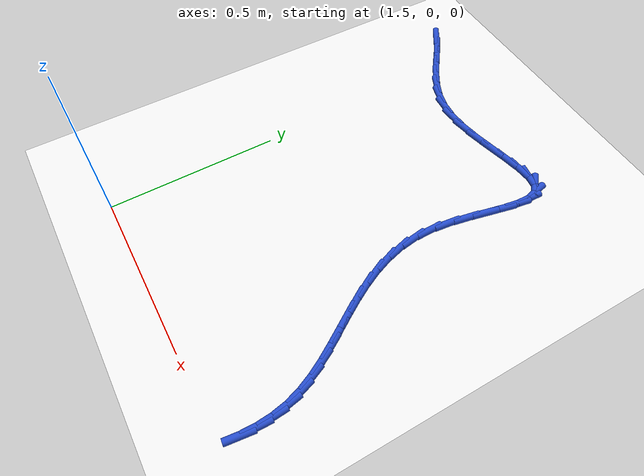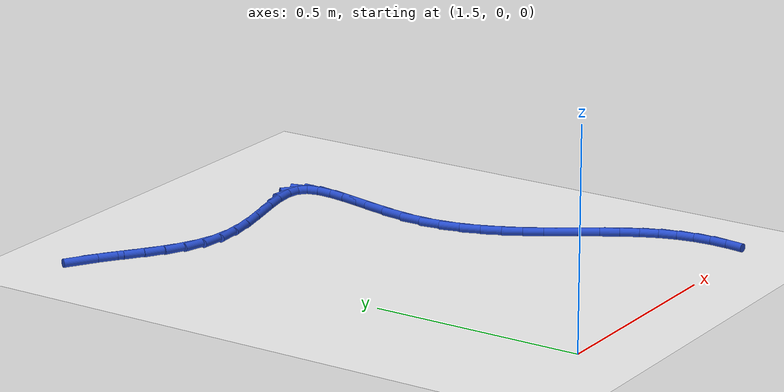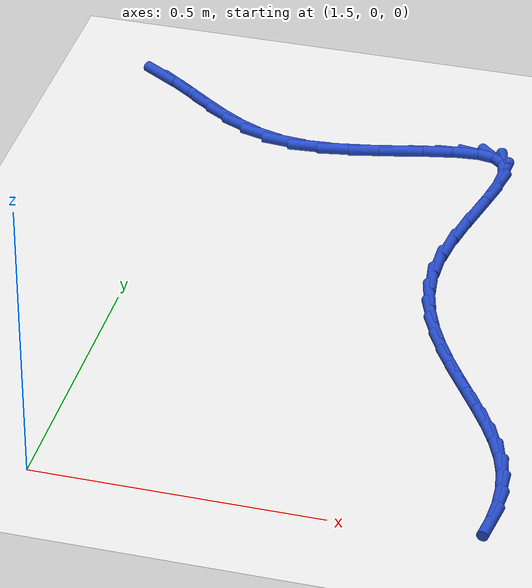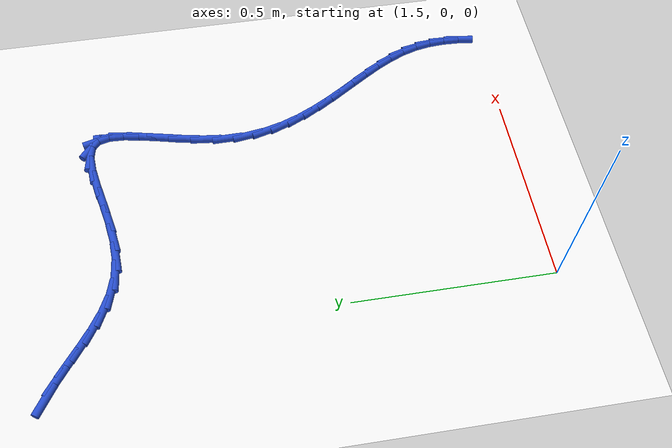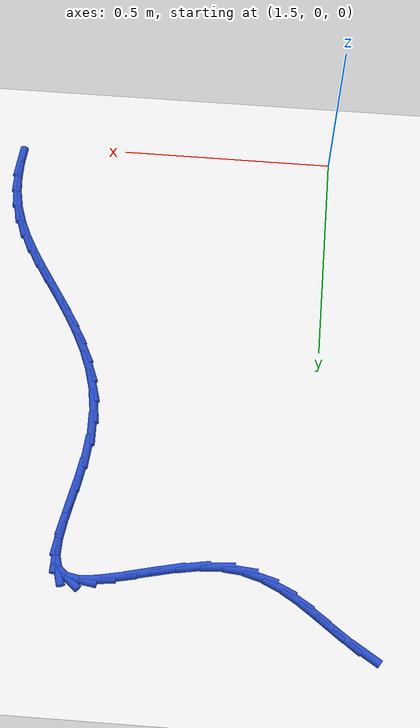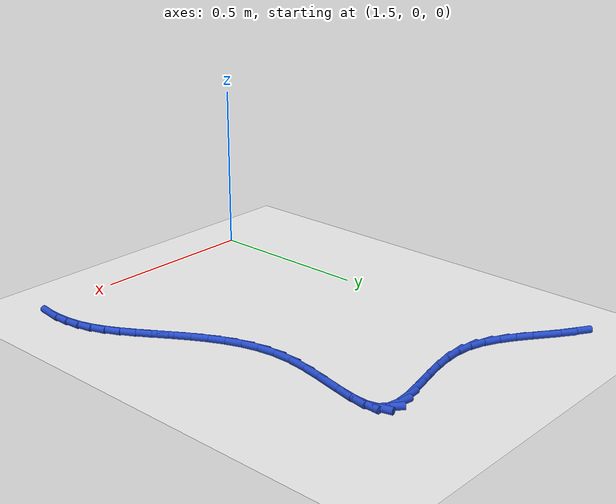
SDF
<sdf version="1.6">
 <world name="default">
  <model name="ground_plane">
   <static>1</static>
   <link name="link">
    <collision name="collision">
     <geometry><plane><normal>0 0 1</normal><size>100 100</size></plane></geometry>
     <surface><friction><ode><mu>100</mu><mu2>50</mu2></ode></friction></surface>
    </collision>
    <visual name="visual">
     <cast_shadows>0</cast_shadows>
     <geometry><plane><normal>0 0 1</normal><size>100 100</size></plane></geometry>
     <material>
      <script><uri>file://media/materials/scripts/gazebo.material</uri><name>Gazebo/WhiteGlow</name></script>
     </material>
    </visual>
   </link>
  </model>
  <model name="line">
   <link name="link_43">
    <pose>1.3680267707840656 1.2044589832217336 0.01 0 1.57 -0.5607190232727151</pose>
    <collision name="collision">
     <geometry><cylinder><radius>0.01</radius><length>0.08</length></cylinder></geometry>
    </collision>
    <visual name="visual">
     <material>
      <script><name>Gazebo/Blue</name><uri>file://media/materials/scripts/gazebo.material</uri></script>
     </material>
     <geometry><cylinder><radius>0.01</radius><length>0.08</length></cylinder></geometry>
    </visual>
   </link>
   <link name="link_44">
    <pose>1.4069775385761374 1.1799997849553465 0.01 0 1.57 -0.6251632926310164</pose>
    <collision name="collision">
     <geometry><cylinder><radius>0.01</radius><length>0.08</length></cylinder></geometry>
    </collision>
    <visual name="visual">
     <material>
      <script><name>Gazebo/Blue</name><uri>file://media/materials/scripts/gazebo.material</uri></script>
     </material>
     <geometry><cylinder><radius>0.01</radius><length>0.08</length></cylinder></geometry>
    </visual>
   </link>
   <link name="link_45">
    <pose>1.444891716823267 1.152635880324854 0.01 0 1.57 -0.6436807654438337</pose>
    <collision name="collision">
     <geometry><cylinder><radius>0.01</radius><length>0.08</length></cylinder></geometry>
    </collision>
    <visual name="visual">
     <material>
      <script><name>Gazebo/Blue</name><uri>file://media/materials/scripts/gazebo.material</uri></script>
     </material>
     <geometry><cylinder><radius>0.01</radius><length>0.08</length></cylinder></geometry>
    </visual>
   </link>
   <link name="link_46">
    <pose>1.4826580022899651 1.1243005632892524 0.01 0 1.57 -0.6179823619485597</pose>
    <collision name="collision">
     <geometry><cylinder><radius>0.01</radius><length>0.08</length></cylinder></geometry>
    </collision>
    <visual name="visual">
     <material>
      <script><name>Gazebo/Blue</name><uri>file://media/materials/scripts/gazebo.material</uri></script>
     </material>
     <geometry><cylinder><radius>0.01</radius><length>0.08</length></cylinder></geometry>
    </visual>
   </link>
   <link name="link_47">
    <pose>1.5211650917407433 1.0969271278075403 0.01 0 1.57 -0.5476481269111763</pose>
    <collision name="collision">
     <geometry><cylinder><radius>0.01</radius><length>0.08</length></cylinder></geometry>
    </collision>
    <visual name="visual">
     <material>
      <script><name>Gazebo/Blue</name><uri>file://media/materials/scripts/gazebo.material</uri></script>
     </material>
     <geometry><cylinder><radius>0.01</radius><length>0.08</length></cylinder></geometry>
    </visual>
   </link>
   <link name="link_48">
    <pose>1.5613016819401115 1.0724488678387132 0.01 0 1.57 -0.4316917704125591</pose>
    <collision name="collision">
     <geometry><cylinder><radius>0.01</radius><length>0.08</length></cylinder></geometry>
    </collision>
    <visual name="visual">
     <material>
      <script><name>Gazebo/Blue</name><uri>file://media/materials/scripts/gazebo.material</uri></script>
     </material>
     <geometry><cylinder><radius>0.01</radius><length>0.08</length></cylinder></geometry>
    </visual>
   </link>
   <link name="link_49">
    <pose>1.603956469652582 1.0527990773417697 0.01 0 1.57 -0.27282259820011046</pose>
    <collision name="collision">
     <geometry><cylinder><radius>0.01</radius><length>0.08</length></cylinder></geometry>
    </collision>
    <visual name="visual">
     <material>
      <script><name>Gazebo/Blue</name><uri>file://media/materials/scripts/gazebo.material</uri></script>
     </material>
     <geometry><cylinder><radius>0.01</radius><length>0.08</length></cylinder></geometry>
    </visual>
   </link>
   <link name="link_50">
    <pose>1.6500181516426642 1.0399110502757052 0.01 0 1.57 -0.08451036166621988</pose>
    <collision name="collision">
     <geometry><cylinder><radius>0.01</radius><length>0.08</length></cylinder></geometry>
    </collision>
    <visual name="visual">
     <material>
      <script><name>Gazebo/Blue</name><uri>file://media/materials/scripts/gazebo.material</uri></script>
     </material>
     <geometry><cylinder><radius>0.01</radius><length>0.08</length></cylinder></geometry>
    </visual>
   </link>
   <link name="link_51">
    <pose>1.7003308070543601 1.0356489581135537 0.01 0 1.57 0.07581926381912904</pose>
    <collision name="collision">
     <geometry><cylinder><radius>0.01</radius><length>0.08</length></cylinder></geometry>
    </collision>
    <visual name="visual">
     <material>
      <script><name>Gazebo/Blue</name><uri>file://media/materials/scripts/gazebo.material</uri></script>
     </material>
     <geometry><cylinder><radius>0.01</radius><length>0.08</length></cylinder></geometry>
    </visual>
   </link>
   <link name="link_52">
    <pose>1.7543680973071665 1.0397538945208913 0.01 0 1.57 0.17334936584459137</pose>
    <collision name="collision">
     <geometry><cylinder><radius>0.01</radius><length>0.08</length></cylinder></geometry>
    </collision>
    <visual name="visual">
     <material>
      <script><name>Gazebo/Blue</name><uri>file://media/materials/scripts/gazebo.material</uri></script>
     </material>
     <geometry><cylinder><radius>0.01</radius><length>0.08</length></cylinder></geometry>
    </visual>
   </link>
   <link name="link_53">
    <pose>1.810009408464629 1.0494970707568727 0.01 0 1.57 0.22357490172900715</pose>
    <collision name="collision">
     <geometry><cylinder><radius>0.01</radius><length>0.08</length></cylinder></geometry>
    </collision>
    <visual name="visual">
     <material>
      <script><name>Gazebo/Blue</name><uri>file://media/materials/scripts/gazebo.material</uri></script>
     </material>
     <geometry><cylinder><radius>0.01</radius><length>0.08</length></cylinder></geometry>
    </visual>
   </link>
   <link name="link_54">
    <pose>1.8650444159001893 1.0620107165337538 0.01 0 1.57 0.23344227509720847</pose>
    <collision name="collision">
     <geometry><cylinder><radius>0.01</radius><length>0.08</length></cylinder></geometry>
    </collision>
    <visual name="visual">
     <material>
      <script><name>Gazebo/Blue</name><uri>file://media/materials/scripts/gazebo.material</uri></script>
     </material>
     <geometry><cylinder><radius>0.01</radius><length>0.08</length></cylinder></geometry>
    </visual>
   </link>
   <link name="link_55">
    <pose>1.9172627949872918 1.074427061563792 0.01 0 1.57 0.19766019570771223</pose>
    <collision name="collision">
     <geometry><cylinder><radius>0.01</radius><length>0.08</length></cylinder></geometry>
    </collision>
    <visual name="visual">
     <material>
      <script><name>Gazebo/Blue</name><uri>file://media/materials/scripts/gazebo.material</uri></script>
     </material>
     <geometry><cylinder><radius>0.01</radius><length>0.08</length></cylinder></geometry>
    </visual>
   </link>
   <link name="link_56">
    <pose>1.9644542210993792 1.0838783355592445 0.01 0 1.57 0.09031823905235421</pose>
    <collision name="collision">
     <geometry><cylinder><radius>0.01</radius><length>0.08</length></cylinder></geometry>
    </collision>
    <visual name="visual">
     <material>
      <script><name>Gazebo/Blue</name><uri>file://media/materials/scripts/gazebo.material</uri></script>
     </material>
     <geometry><cylinder><radius>0.01</radius><length>0.08</length></cylinder></geometry>
    </visual>
   </link>
   <link name="link_57">
    <pose>2.0044083696098935 1.0874967682323673 0.01 0 1.57 -0.16507706059372845</pose>
    <collision name="collision">
     <geometry><cylinder><radius>0.01</radius><length>0.08</length></cylinder></geometry>
    </collision>
    <visual name="visual">
     <material>
      <script><name>Gazebo/Blue</name><uri>file://media/materials/scripts/gazebo.material</uri></script>
     </material>
     <geometry><cylinder><radius>0.01</radius><length>0.08</length></cylinder></geometry>
    </visual>
   </link>
   <link name="link_58">
    <pose>2.034914915892279 1.082414589295418 0.01 0 1.57 -0.7193502826881091</pose>
    <collision name="collision">
     <geometry><cylinder><radius>0.01</radius><length>0.08</length></cylinder></geometry>
    </collision>
    <visual name="visual">
     <material>
      <script><name>Gazebo/Blue</name><uri>file://media/materials/scripts/gazebo.material</uri></script>
     </material>
     <geometry><cylinder><radius>0.01</radius><length>0.08</length></cylinder></geometry>
    </visual>
   </link>
   <link name="link_59">
    <pose>2.053837443026246 1.065839987432087 0.01 0 1.57 -1.3179193909703175</pose>
    <collision name="collision">
     <geometry><cylinder><radius>0.01</radius><length>0.08</length></cylinder></geometry>
    </collision>
    <visual name="visual">
     <material>
      <script><name>Gazebo/Blue</name><uri>file://media/materials/scripts/gazebo.material</uri></script>
     </material>
     <geometry><cylinder><radius>0.01</radius><length>0.08</length></cylinder></geometry>
    </visual>
   </link>
   <link name="link_60">
    <pose>2.0612299123886766 1.0372323222919402 0.01 0 1.57 1.5298909134646828</pose>
    <collision name="collision">
     <geometry><cylinder><radius>0.01</radius><length>0.08</length></cylinder></geometry>
    </collision>
    <visual name="visual">
     <material>
      <script><name>Gazebo/Blue</name><uri>file://media/materials/scripts/gazebo.material</uri></script>
     </material>
     <geometry><cylinder><radius>0.01</radius><length>0.08</length></cylinder></geometry>
    </visual>
   </link>
   <link name="link_61">
    <pose>2.059649736940004 0.9986238869427719 0.01 0 1.57 1.4031519282249263</pose>
    <collision name="collision">
     <geometry><cylinder><radius>0.01</radius><length>0.08</length></cylinder></geometry>
    </collision>
    <visual name="visual">
     <material>
      <script><name>Gazebo/Blue</name><uri>file://media/materials/scripts/gazebo.material</uri></script>
     </material>
     <geometry><cylinder><radius>0.01</radius><length>0.08</length></cylinder></geometry>
    </visual>
   </link>
   <link name="link_62">
    <pose>2.0517912025381 0.9521876461770461 0.01 0 1.57 1.3545652106312118</pose>
    <collision name="collision">
     <geometry><cylinder><radius>0.01</radius><length>0.08</length></cylinder></geometry>
    </collision>
    <visual name="visual">
     <material>
      <script><name>Gazebo/Blue</name><uri>file://media/materials/scripts/gazebo.material</uri></script>
     </material>
     <geometry><cylinder><radius>0.01</radius><length>0.08</length></cylinder></geometry>
    </visual>
   </link>
   <link name="link_63">
    <pose>2.0403485950408426 0.9000965647872247 0.01 0 1.57 1.3524215035014786</pose>
    <collision name="collision">
     <geometry><cylinder><radius>0.01</radius><length>0.08</length></cylinder></geometry>
    </collision>
    <visual name="visual">
     <material>
      <script><name>Gazebo/Blue</name><uri>file://media/materials/scripts/gazebo.material</uri></script>
     </material>
     <geometry><cylinder><radius>0.01</radius><length>0.08</length></cylinder></geometry>
    </visual>
   </link>
   <link name="link_64">
    <pose>2.0280162003061024 0.8445236075657706 0.01 0 1.57 1.387783810531977</pose>
    <collision name="collision">
     <geometry><cylinder><radius>0.01</radius><length>0.08</length></cylinder></geometry>
    </collision>
    <visual name="visual">
     <material>
      <script><name>Gazebo/Blue</name><uri>file://media/materials/scripts/gazebo.material</uri></script>
     </material>
     <geometry><cylinder><radius>0.01</radius><length>0.08</length></cylinder></geometry>
    </visual>
   </link>
   <link name="link_65">
    <pose>2.0174883041917555 0.7876417393051469 0.01 0 1.57 1.4635805779557667</pose>
    <collision name="collision">
     <geometry><cylinder><radius>0.01</radius><length>0.08</length></cylinder></geometry>
    </collision>
    <visual name="visual">
     <material>
      <script><name>Gazebo/Blue</name><uri>file://media/materials/scripts/gazebo.material</uri></script>
     </material>
     <geometry><cylinder><radius>0.01</radius><length>0.08</length></cylinder></geometry>
    </visual>
   </link>
   <link name="link_66">
    <pose>2.0114591925556757 0.7316239247978155 0.01 0 1.57 -1.5567681061077525</pose>
    <collision name="collision">
     <geometry><cylinder><radius>0.01</radius><length>0.08</length></cylinder></geometry>
    </collision>
    <visual name="visual">
     <material>
      <script><name>Gazebo/Blue</name><uri>file://media/materials/scripts/gazebo.material</uri></script>
     </material>
     <geometry><cylinder><radius>0.01</radius><length>0.08</length></cylinder></geometry>
    </visual>
   </link>
   <link name="link_67">
    <pose>2.01220641762891 0.6783615707518079 0.01 0 1.57 -1.4251010836758564</pose>
    <collision name="collision">
     <geometry><cylinder><radius>0.01</radius><length>0.08</length></cylinder></geometry>
    </collision>
    <visual name="visual">
     <material>
      <script><name>Gazebo/Blue</name><uri>file://media/materials/scripts/gazebo.material</uri></script>
     </material>
     <geometry><cylinder><radius>0.01</radius><length>0.08</length></cylinder></geometry>
    </visual>
   </link>
   <link name="link_68">
    <pose>2.0195806112070773 0.6281063816172126 0.01 0 1.57 -1.3046031992397633</pose>
    <collision name="collision">
     <geometry><cylinder><radius>0.01</radius><length>0.08</length></cylinder></geometry>
    </collision>
    <visual name="visual">
     <material>
      <script><name>Gazebo/Blue</name><uri>file://media/materials/scripts/gazebo.material</uri></script>
     </material>
     <geometry><cylinder><radius>0.01</radius><length>0.08</length></cylinder></geometry>
    </visual>
   </link>
   <link name="link_69">
    <pose>2.0325562244649222 0.5805180872076876 0.01 0 1.57 -1.2008990077252228</pose>
    <collision name="collision">
     <geometry><cylinder><radius>0.01</radius><length>0.08</length></cylinder></geometry>
    </collision>
    <visual name="visual">
     <material>
      <script><name>Gazebo/Blue</name><uri>file://media/materials/scripts/gazebo.material</uri></script>
     </material>
     <geometry><cylinder><radius>0.01</radius><length>0.08</length></cylinder></geometry>
    </visual>
   </link>
   <link name="link_70">
    <pose>2.0501065229782944 0.5352556163097301 0.01 0 1.57 -1.1171918811300094</pose>
    <collision name="collision">
     <geometry><cylinder><radius>0.01</radius><length>0.08</length></cylinder></geometry>
    </collision>
    <visual name="visual">
     <material>
      <script><name>Gazebo/Blue</name><uri>file://media/materials/scripts/gazebo.material</uri></script>
     </material>
     <geometry><cylinder><radius>0.01</radius><length>0.08</length></cylinder></geometry>
    </visual>
   </link>
   <link name="link_71">
    <pose>2.0712047723230467 0.49197789770983835 0.01 0 1.57 -1.0547594009220238</pose>
    <collision name="collision">
     <geometry><cylinder><radius>0.01</radius><length>0.08</length></cylinder></geometry>
    </collision>
    <visual name="visual">
     <material>
      <script><name>Gazebo/Blue</name><uri>file://media/materials/scripts/gazebo.material</uri></script>
     </material>
     <geometry><cylinder><radius>0.01</radius><length>0.08</length></cylinder></geometry>
    </visual>
   </link>
   <link name="link_72">
    <pose>2.0948242380750286 0.45034386019451117 0.01 0 1.57 -1.0138603770396462</pose>
    <collision name="collision">
     <geometry><cylinder><radius>0.01</radius><length>0.08</length></cylinder></geometry>
    </collision>
    <visual name="visual">
     <material>
      <script><name>Gazebo/Blue</name><uri>file://media/materials/scripts/gazebo.material</uri></script>
     </material>
     <geometry><cylinder><radius>0.01</radius><length>0.08</length></cylinder></geometry>
    </visual>
   </link>
   <link name="link_73">
    <pose>2.119938185810093 0.41001243255024583 0.01 0 1.57 -0.9945770501428814</pose>
    <collision name="collision">
     <geometry><cylinder><radius>0.01</radius><length>0.08</length></cylinder></geometry>
    </collision>
    <visual name="visual">
     <material>
      <script><name>Gazebo/Blue</name><uri>file://media/materials/scripts/gazebo.material</uri></script>
     </material>
     <geometry><cylinder><radius>0.01</radius><length>0.08</length></cylinder></geometry>
    </visual>
   </link>
   <link name="link_74">
    <pose>2.1455198811040894 0.37064254356354115 0.01 0 1.57 -0.9974097007514006</pose>
    <collision name="collision">
     <geometry><cylinder><radius>0.01</radius><length>0.08</length></cylinder></geometry>
    </collision>
    <visual name="visual">
     <material>
      <script><name>Gazebo/Blue</name><uri>file://media/materials/scripts/gazebo.material</uri></script>
     </material>
     <geometry><cylinder><radius>0.01</radius><length>0.08</length></cylinder></geometry>
    </visual>
   </link>
   <link name="link_75">
    <pose>2.170542589532871 0.3318931220208951 0.01 0 1.57 -1.0236197055445337</pose>
    <collision name="collision">
     <geometry><cylinder><radius>0.01</radius><length>0.08</length></cylinder></geometry>
    </collision>
    <visual name="visual">
     <material>
      <script><name>Gazebo/Blue</name><uri>file://media/materials/scripts/gazebo.material</uri></script>
     </material>
     <geometry><cylinder><radius>0.01</radius><length>0.08</length></cylinder></geometry>
    </visual>
   </link>
   <link name="link_76">
    <pose>2.193979576672289 0.2934230967088056 0.01 0 1.57 -1.0753132374164656</pose>
    <collision name="collision">
     <geometry><cylinder><radius>0.01</radius><length>0.08</length></cylinder></geometry>
    </collision>
    <visual name="visual">
     <material>
      <script><name>Gazebo/Blue</name><uri>file://media/materials/scripts/gazebo.material</uri></script>
     </material>
     <geometry><cylinder><radius>0.01</radius><length>0.08</length></cylinder></geometry>
    </visual>
   </link>
   <link name="link_77">
    <pose>2.2148041080981935 0.25489139641377107 0.01 0 1.57 -1.1551240872033282</pose>
    <collision name="collision">
     <geometry><cylinder><radius>0.01</radius><length>0.08</length></cylinder></geometry>
    </collision>
    <visual name="visual">
     <material>
      <script><name>Gazebo/Blue</name><uri>file://media/materials/scripts/gazebo.material</uri></script>
     </material>
     <geometry><cylinder><radius>0.01</radius><length>0.08</length></cylinder></geometry>
    </visual>
   </link>
   <link name="link_78">
    <pose>2.2319894493864356 0.21595694992228923 0.01 0 1.57 -1.2648229897269252</pose>
    <collision name="collision">
     <geometry><cylinder><radius>0.01</radius><length>0.08</length></cylinder></geometry>
    </collision>
    <visual name="visual">
     <material>
      <script><name>Gazebo/Blue</name><uri>file://media/materials/scripts/gazebo.material</uri></script>
     </material>
     <geometry><cylinder><radius>0.01</radius><length>0.08</length></cylinder></geometry>
    </visual>
   </link>
   <link name="link_79">
    <pose>2.244522351126211 0.176282479946444 0.01 0 1.57 -1.3892022795305812</pose>
    <collision name="collision">
     <geometry><cylinder><radius>0.01</radius><length>0.08</length></cylinder></geometry>
    </collision>
    <visual name="visual">
     <material>
      <script><name>Gazebo/Blue</name><uri>file://media/materials/scripts/gazebo.material</uri></script>
     </material>
     <geometry><cylinder><radius>0.01</radius><length>0.08</length></cylinder></geometry>
    </visual>
   </link>
   <link name="link_80">
    <pose>2.251974828024355 0.13569536965903792 0.01 0 1.57 -1.5047452914004007</pose>
    <collision name="collision">
     <geometry><cylinder><radius>0.01</radius><length>0.08</length></cylinder></geometry>
    </collision>
    <visual name="visual">
     <material>
      <script><name>Gazebo/Blue</name><uri>file://media/materials/scripts/gazebo.material</uri></script>
     </material>
     <geometry><cylinder><radius>0.01</radius><length>0.08</length></cylinder></geometry>
    </visual>
   </link>
   <link name="link_81">
    <pose>2.2547164973723257 0.09424740281561332 0.01 0 1.57 1.5343008374824036</pose>
    <collision name="collision">
     <geometry><cylinder><radius>0.01</radius><length>0.08</length></cylinder></geometry>
    </collision>
    <visual name="visual">
     <material>
      <script><name>Gazebo/Blue</name><uri>file://media/materials/scripts/gazebo.material</uri></script>
     </material>
     <geometry><cylinder><radius>0.01</radius><length>0.08</length></cylinder></geometry>
    </visual>
   </link>
   <link name="link_82">
    <pose>2.25317420888752 0.05200646516282919 0.01 0 1.57 1.4457849817697355</pose>
    <collision name="collision">
     <geometry><cylinder><radius>0.01</radius><length>0.08</length></cylinder></geometry>
    </collision>
    <visual name="visual">
     <material>
      <script><name>Gazebo/Blue</name><uri>file://media/materials/scripts/gazebo.material</uri></script>
     </material>
     <geometry><cylinder><radius>0.01</radius><length>0.08</length></cylinder></geometry>
    </visual>
   </link>
  </model>
 </world>
</sdf>
